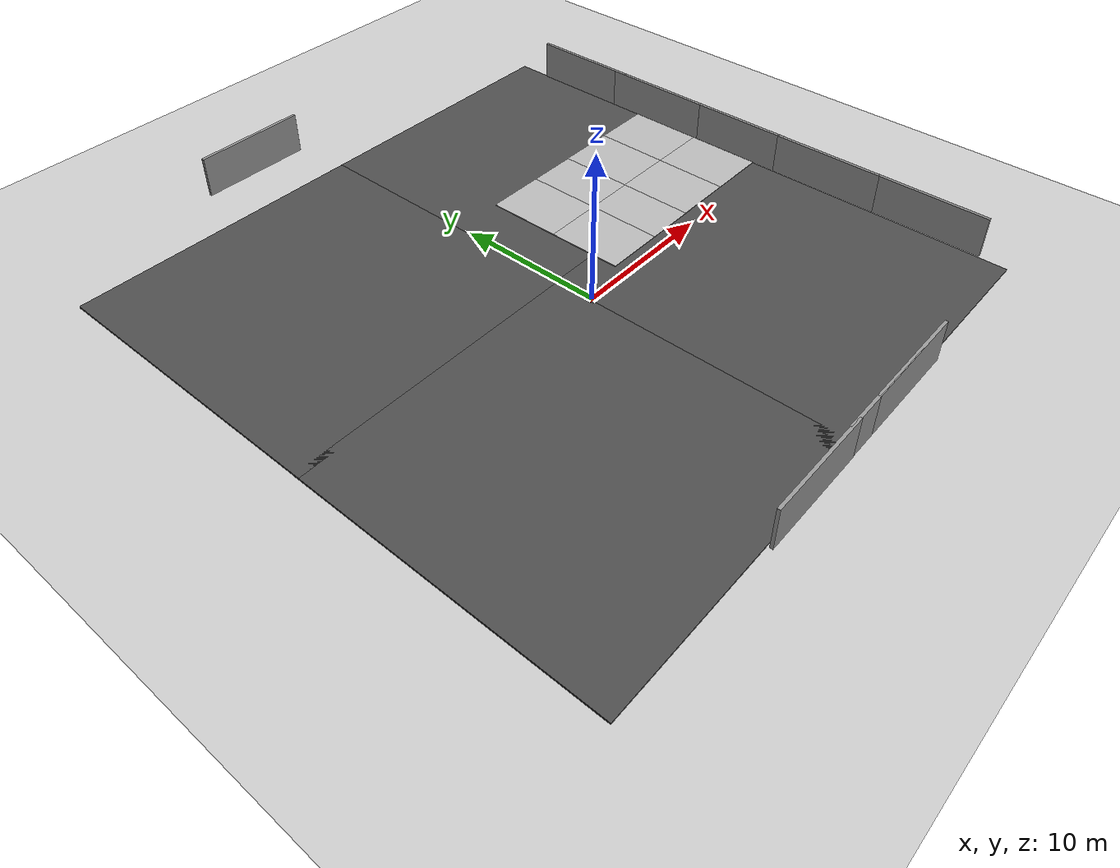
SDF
<sdf version="1.6">
 <world name="default">
  <model name="ground_plane">
   <static>1</static>
   <link name="link">
    <collision name="collision">
     <geometry><plane><normal>0 0 1</normal><size>100 100</size></plane></geometry>
     <surface><friction><ode><mu>100</mu><mu2>50</mu2></ode></friction></surface>
    </collision>
    <visual name="visual">
     <cast_shadows>0</cast_shadows>
     <geometry><plane><normal>0 0 1</normal><size>100 100</size></plane></geometry>
     <material>
      <script><uri>file://media/materials/scripts/gazebo.material</uri><name>Gazebo/Grey</name></script>
     </material>
    </visual>
   </link>
  </model>
  <model name="asphalt_plane">
   <static>1</static>
   <link name="link">
    <collision name="collision">
     <geometry><box><size>20 20 0.1</size></box></geometry>
     <surface><friction><ode><mu>100</mu><mu2>50</mu2></ode></friction></surface>
    </collision>
    <visual name="visual">
     <cast_shadows>0</cast_shadows>
     <geometry><box><size>20 20 0.1</size></box></geometry>
     <material>
      <script>
       <uri>model://asphalt_plane/materials/scripts</uri>
       <uri>model://asphalt_plane/materials/textures</uri>
       <name>vrc/asphalt</name>
      </script>
     </material>
    </visual>
   </link>
   <pose>-10.1692 -7.43707 0 0 -0 0</pose>
  </model>
  <model name="asphalt_plane_clone">
   <static>1</static>
   <link name="link">
    <collision name="collision">
     <geometry><box><size>20 20 0.1</size></box></geometry>
     <surface><friction><ode><mu>100</mu><mu2>50</mu2></ode></friction></surface>
    </collision>
    <visual name="visual">
     <cast_shadows>0</cast_shadows>
     <geometry><box><size>20 20 0.1</size></box></geometry>
     <material>
      <script>
       <uri>model://asphalt_plane/materials/scripts</uri>
       <uri>model://asphalt_plane/materials/textures</uri>
       <name>vrc/asphalt</name>
      </script>
     </material>
    </visual>
   </link>
   <pose>-10.1603 12.171 0 0 -0 0</pose>
  </model>
  <model name="asphalt_plane_clone_clone">
   <static>1</static>
   <link name="link">
    <collision name="collision">
     <geometry><box><size>20 20 0.1</size></box></geometry>
     <surface><friction><ode><mu>100</mu><mu2>50</mu2></ode></friction></surface>
    </collision>
    <visual name="visual">
     <cast_shadows>0</cast_shadows>
     <geometry><box><size>20 20 0.1</size></box></geometry>
     <material>
      <script>
       <uri>model://asphalt_plane/materials/scripts</uri>
       <uri>model://asphalt_plane/materials/textures</uri>
       <name>vrc/asphalt</name>
      </script>
     </material>
    </visual>
   </link>
   <pose>8.71597 12.1785 0 0 -0 0</pose>
  </model>
  <model name="asphalt_plane_clone_clone_0">
   <static>1</static>
   <link name="link">
    <collision name="collision">
     <geometry><box><size>20 20 0.1</size></box></geometry>
     <surface><friction><ode><mu>100</mu><mu2>50</mu2></ode></friction></surface>
    </collision>
    <visual name="visual">
     <cast_shadows>0</cast_shadows>
     <geometry><box><size>20 20 0.1</size></box></geometry>
     <material>
      <script>
       <uri>model://asphalt_plane/materials/scripts</uri>
       <uri>model://asphalt_plane/materials/textures</uri>
       <name>vrc/asphalt</name>
      </script>
     </material>
    </visual>
   </link>
   <pose>8.60996 -7.34898 0 0 -0 0</pose>
  </model>
  <model name="grey_wall">
   <static>1</static>
   <link name="link">
    <pose>0 0 1.4 0 -0 0</pose>
    <collision name="collision"><geometry><box><size>7.5 0.2 2.8</size></box></geometry></collision>
    <visual name="visual">
     <cast_shadows>0</cast_shadows>
     <geometry><box><size>7.5 0.2 2.8</size></box></geometry>
     <material>
      <script>
       <uri>model://grey_wall/materials/scripts</uri>
       <uri>model://grey_wall/materials/textures</uri>
       <name>vrc/grey_wall</name>
      </script>
     </material>
    </visual>
   </link>
   <pose>-4.8114 -17.6626 0 0 -0 0</pose>
  </model>
  <model name="grey_wall_clone">
   <static>1</static>
   <link name="link">
    <pose>0 0 1.4 0 -0 0</pose>
    <collision name="collision"><geometry><box><size>7.5 0.2 2.8</size></box></geometry></collision>
    <visual name="visual">
     <cast_shadows>0</cast_shadows>
     <geometry><box><size>7.5 0.2 2.8</size></box></geometry>
     <material>
      <script>
       <uri>model://grey_wall/materials/scripts</uri>
       <uri>model://grey_wall/materials/textures</uri>
       <name>vrc/grey_wall</name>
      </script>
     </material>
    </visual>
   </link>
   <pose>1.84642 -17.6367 0 0 -0 0</pose>
  </model>
  <model name="grey_wall_clone_0">
   <static>1</static>
   <link name="link">
    <pose>0 0 1.4 0 -0 0</pose>
    <collision name="collision"><geometry><box><size>7.5 0.2 2.8</size></box></geometry></collision>
    <visual name="visual">
     <cast_shadows>0</cast_shadows>
     <geometry><box><size>7.5 0.2 2.8</size></box></geometry>
     <material>
      <script>
       <uri>model://grey_wall/materials/scripts</uri>
       <uri>model://grey_wall/materials/textures</uri>
       <name>vrc/grey_wall</name>
      </script>
     </material>
    </visual>
   </link>
   <pose>4.62088 -17.6372 0 0 -0 0</pose>
  </model>
  <model name="grey_wall_clone_clone">
   <static>1</static>
   <link name="link">
    <pose>0 0 1.4 0 -0 0</pose>
    <collision name="collision"><geometry><box><size>7.5 0.2 2.8</size></box></geometry></collision>
    <visual name="visual">
     <cast_shadows>0</cast_shadows>
     <geometry><box><size>7.5 0.2 2.8</size></box></geometry>
     <material>
      <script>
       <uri>model://grey_wall/materials/scripts</uri>
       <uri>model://grey_wall/materials/textures</uri>
       <name>vrc/grey_wall</name>
      </script>
     </material>
    </visual>
   </link>
   <pose>-4.48764 26.0166 0 0 -0 0</pose>
  </model>
  <model name="grey_wall_clone_clone_clone">
   <static>1</static>
   <link name="link">
    <pose>0 0 1.4 0 -0 0</pose>
    <collision name="collision"><geometry><box><size>7.5 0.2 2.8</size></box></geometry></collision>
    <visual name="visual">
     <cast_shadows>0</cast_shadows>
     <geometry><box><size>7.5 0.2 2.8</size></box></geometry>
     <material>
      <script>
       <uri>model://grey_wall/materials/scripts</uri>
       <uri>model://grey_wall/materials/textures</uri>
       <name>vrc/grey_wall</name>
      </script>
     </material>
    </visual>
   </link>
   <pose>18.7544 16.0387 0 0 0 -1.56734</pose>
  </model>
  <model name="grey_wall_clone_clone_clone_clone">
   <static>1</static>
   <link name="link">
    <pose>0 0 1.4 0 -0 0</pose>
    <collision name="collision"><geometry><box><size>7.5 0.2 2.8</size></box></geometry></collision>
    <visual name="visual">
     <cast_shadows>0</cast_shadows>
     <geometry><box><size>7.5 0.2 2.8</size></box></geometry>
     <material>
      <script>
       <uri>model://grey_wall/materials/scripts</uri>
       <uri>model://grey_wall/materials/textures</uri>
       <name>vrc/grey_wall</name>
      </script>
     </material>
    </visual>
   </link>
   <pose>18.767 9.41754 0 0 0 -1.56734</pose>
  </model>
  <model name="grey_wall_clone_clone_clone_clone_0">
   <static>1</static>
   <link name="link">
    <pose>0 0 1.4 0 -0 0</pose>
    <collision name="collision"><geometry><box><size>7.5 0.2 2.8</size></box></geometry></collision>
    <visual name="visual">
     <cast_shadows>0</cast_shadows>
     <geometry><box><size>7.5 0.2 2.8</size></box></geometry>
     <material>
      <script>
       <uri>model://grey_wall/materials/scripts</uri>
       <uri>model://grey_wall/materials/textures</uri>
       <name>vrc/grey_wall</name>
      </script>
     </material>
    </visual>
   </link>
   <pose>18.7963 2.45369 0 0 0 -1.56734</pose>
  </model>
  <model name="grey_wall_clone_clone_clone_clone_1">
   <static>1</static>
   <link name="link">
    <pose>0 0 1.4 0 -0 0</pose>
    <collision name="collision"><geometry><box><size>7.5 0.2 2.8</size></box></geometry></collision>
    <visual name="visual">
     <cast_shadows>0</cast_shadows>
     <geometry><box><size>7.5 0.2 2.8</size></box></geometry>
     <material>
      <script>
       <uri>model://grey_wall/materials/scripts</uri>
       <uri>model://grey_wall/materials/textures</uri>
       <name>vrc/grey_wall</name>
      </script>
     </material>
    </visual>
   </link>
   <pose>18.8058 -4.41342 0 0 0 -1.56734</pose>
  </model>
  <model name="grey_wall_clone_clone_clone_clone_2">
   <static>1</static>
   <link name="link">
    <pose>0 0 1.4 0 -0 0</pose>
    <collision name="collision"><geometry><box><size>7.5 0.2 2.8</size></box></geometry></collision>
    <visual name="visual">
     <cast_shadows>0</cast_shadows>
     <geometry><box><size>7.5 0.2 2.8</size></box></geometry>
     <material>
      <script>
       <uri>model://grey_wall/materials/scripts</uri>
       <uri>model://grey_wall/materials/textures</uri>
       <name>vrc/grey_wall</name>
      </script>
     </material>
    </visual>
   </link>
   <pose>18.8343 -11.7301 0 0 0 -1.56734</pose>
  </model>
  <model name="mud_box">
   <static>1</static>
   <link name="link">
    <collision name="collision"><geometry><box><size>8 10 0.2</size></box></geometry></collision>
    <visual name="visual_1">
     <pose>-2 2.5 0 0 -0 0</pose>
     <cast_shadows>0</cast_shadows>
     <geometry><box><size>4 5 0.2</size></box></geometry>
     <material>
      <script>
       <uri>model://mud_box/materials/scripts</uri>
       <uri>model://mud_box/materials/textures</uri>
       <name>vrc/mud</name>
      </script>
     </material>
    </visual>
    <visual name="visual_2">
     <pose>2 2.5 0 0 -0 0</pose>
     <cast_shadows>0</cast_shadows>
     <geometry><box><size>4 5 0.2</size></box></geometry>
     <material>
      <script>
       <uri>model://mud_box/materials/scripts</uri>
       <uri>model://mud_box/materials/textures</uri>
       <name>vrc/mud</name>
      </script>
     </material>
    </visual>
    <visual name="visual_3">
     <pose>2 -2.5 0 0 -0 0</pose>
     <cast_shadows>0</cast_shadows>
     <geometry><box><size>4 5 0.2</size></box></geometry>
     <material>
      <script>
       <uri>model://mud_box/materials/scripts</uri>
       <uri>model://mud_box/materials/textures</uri>
       <name>vrc/mud</name>
      </script>
     </material>
    </visual>
    <visual name="visual_4">
     <pose>-2 -2.5 0 0 -0 0</pose>
     <cast_shadows>0</cast_shadows>
     <geometry><box><size>4 5 0.2</size></box></geometry>
     <material>
      <script>
       <uri>model://mud_box/materials/scripts</uri>
       <uri>model://mud_box/materials/textures</uri>
       <name>vrc/mud</name>
      </script>
     </material>
    </visual>
   </link>
   <pose>14.6137 5.86275 0 0 -0 0</pose>
  </model>
  <model name="mud_box_clone">
   <static>1</static>
   <link name="link">
    <collision name="collision"><geometry><box><size>8 10 0.2</size></box></geometry></collision>
    <visual name="visual_1">
     <pose>-2 2.5 0 0 -0 0</pose>
     <cast_shadows>0</cast_shadows>
     <geometry><box><size>4 5 0.2</size></box></geometry>
     <material>
      <script>
       <uri>model://mud_box/materials/scripts</uri>
       <uri>model://mud_box/materials/textures</uri>
       <name>vrc/mud</name>
      </script>
     </material>
    </visual>
    <visual name="visual_2">
     <pose>2 2.5 0 0 -0 0</pose>
     <cast_shadows>0</cast_shadows>
     <geometry><box><size>4 5 0.2</size></box></geometry>
     <material>
      <script>
       <uri>model://mud_box/materials/scripts</uri>
       <uri>model://mud_box/materials/textures</uri>
       <name>vrc/mud</name>
      </script>
     </material>
    </visual>
    <visual name="visual_3">
     <pose>2 -2.5 0 0 -0 0</pose>
     <cast_shadows>0</cast_shadows>
     <geometry><box><size>4 5 0.2</size></box></geometry>
     <material>
      <script>
       <uri>model://mud_box/materials/scripts</uri>
       <uri>model://mud_box/materials/textures</uri>
       <name>vrc/mud</name>
      </script>
     </material>
    </visual>
    <visual name="visual_4">
     <pose>-2 -2.5 0 0 -0 0</pose>
     <cast_shadows>0</cast_shadows>
     <geometry><box><size>4 5 0.2</size></box></geometry>
     <material>
      <script>
       <uri>model://mud_box/materials/scripts</uri>
       <uri>model://mud_box/materials/textures</uri>
       <name>vrc/mud</name>
      </script>
     </material>
    </visual>
   </link>
   <pose>7.23773 5.83307 0 0 -0 0</pose>
  </model>
  <light name="sun" type="directional">
   <pose>0 0 10 0 -0 0</pose>
   <diffuse>0.8 0.8 0.8 1</diffuse>
   <specular>0.2 0.2 0.2 1</specular>
   <attenuation>
    <range>1000</range>
    <constant>0.9</constant>
    <linear>0.01</linear>
    <quadratic>0.001</quadratic>
   </attenuation>
   <direction>-0.5 0.1 -0.9</direction>
  </light>
  <gravity>0 0 -9.8</gravity>
  <magnetic_field>6e-06 2.3e-05 -4.2e-05</magnetic_field>
  <atmosphere type="adiabatic"/>
  <physics name="default_physics" default="0" type="ode">
   <max_step_size>0.001</max_step_size>
   <real_time_factor>1</real_time_factor>
   <real_time_update_rate>1000</real_time_update_rate>
  </physics>
  <scene><ambient>0.4 0.4 0.4 1</ambient><background>0.7 0.7 0.7 1</background><shadows>1</shadows></scene>
  <audio><device>default</device></audio>
  <spherical_coordinates>
   <surface_model>EARTH_WGS84</surface_model>
   <latitude_deg>47.840640</latitude_deg>
   <longitude_deg>10.619944</longitude_deg>
   <elevation>740.0</elevation>
   <heading_deg>180</heading_deg>
  </spherical_coordinates>
  <include><uri>model://bigfootbot</uri></include>
 </world>
</sdf>

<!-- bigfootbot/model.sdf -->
<sdf version='1.5'> <!--- latest version is 1.9? -->
  <model name="bigfootbot">
    <!-- While we are creating the robot, we want Gazebo’s physics engine to ignore the robot
    so we set static to true -->
    <static>false</static>

    <!-- ****************** ROBOT BASE FOOTPRINT ***************************  -->
    <link name="base_footprint">
      <pose>0.0 0.0 0.0 0.0 0.0 0.0</pose>
    </link>

    <!-- ********************** ROBOT BASE *********************************  -->
    <link name="base_link">

      <inertial>
        <mass>20</mass>
        <inertia> <!-- inertias are tricky to compute -->
          <!-- http://gazebosim.org/tutorials?tut=inertia&cat=build_robot -->
          <ixx>0.083</ixx>       <!-- for a box: ixx = 0.083 * mass * (y*y + z*z) -->
          <ixy>0.0</ixy>         <!-- for a box: ixy = 0 -->
          <ixz>0.0</ixz>         <!-- for a box: ixz = 0 -->
          <iyy>0.083</iyy>       <!-- for a box: iyy = 0.083 * mass * (x*x + z*z) -->
          <iyz>0.0</iyz>         <!-- for a box: iyz = 0 -->
          <izz>0.083</izz>       <!-- for a box: izz = 0.083 * mass * (x*x + y*y) -->
        </inertia>
      </inertial>

      <collision name="base_collision">
        <pose>0 0 0 0 0 0</pose>
        <geometry>
          <box>
            <size>0.75 0.45 0.20</size>
          </box>
        </geometry>
      </collision>

      <visual name="base_visual">
        <pose>0.375 -0.225 -0.1 0 0 1.5708</pose>
        <geometry>
          <mesh>
            <uri>model://bigfootbot/meshes/frame_with_covers_2_m.stl</uri>
            <scale>1.0 1.0 1.0</scale>
          </mesh>
        </geometry>
        <material>
          <ambient>1.0 0.0 0.0 1.0</ambient> <!-- RGB [0..1] + alpha [0..1]-->
          <diffuse>1.0 0.0 0.0 1.0</diffuse>
          <specular>0.0 0.0 0.0 1.0</specular>
          <emissive>0.0 0.0 0.0 1.0</emissive>
        </material>
      </visual>

    </link>
    <!-- END OF ROBOT BASE -->

    <!-- ****************************** LIDAR *****************************    -->
    <link name="lidar_link">
      <inertial>
        <pose>0.215 0 0.13 0 0 0</pose>
        <inertia>
          <ixx>0.001</ixx>
          <ixy>0.000</ixy>
          <ixz>0.000</ixz>
          <iyy>0.001</iyy>
          <iyz>0.000</iyz>
          <izz>0.001</izz>
        </inertia>
        <mass>0.114</mass>
      </inertial>

      <collision name="lidar_collision">
        <pose>0.215 0 0.13 0 0 0</pose>
        <geometry>
          <cylinder>
            <radius>0.0508</radius>
            <length>0.18</length>
          </cylinder>
        </geometry>
      </collision>

      <visual name="lidar_visual">
        <pose>0.215 0 0.13 0 0 0</pose>
        <geometry>
          <cylinder>
            <radius>0.0508</radius>
            <length>0.18</length>
          </cylinder>
        </geometry>
        <material>
          <ambient>0.0 0.0 0.0 1.0</ambient>
          <diffuse>0.0 0.0 0.0 1.0</diffuse>
          <specular>0.0 0.0 0.0 1.0</specular>
          <emissive>0.0 0.0 0.0 1.0</emissive>
        </material>
      </visual>

      <sensor name="lidar" type="ray">
        <pose>0.215 0 0.215 0 0 0</pose>
        <always_on>true</always_on>
        <visualize>true</visualize>
        <update_rate>5</update_rate>
        <ray>
          <scan>
            <horizontal>
              <samples>360</samples>
              <resolution>1.00000</resolution>
              <min_angle>0.000000</min_angle>
              <max_angle>6.280000</max_angle>
            </horizontal>
          </scan>
          <range>
            <min>0.120000</min>
            <max>3.5</max>
            <resolution>0.015000</resolution>
          </range>
          <noise>
            <type>gaussian</type>
            <mean>0.0</mean>
            <stddev>0.01</stddev>
          </noise>
        </ray>
        <plugin name="scan" filename="libgazebo_ros_ray_sensor.so">
          <ros>
            <!-- Set namespace -->
            <namespace>/gazebo</namespace>

            <remapping>~/out:=scan</remapping>
          </ros>
          <output_type>sensor_msgs/LaserScan</output_type>
          <frame_name>lidar_link</frame_name>
        </plugin>
      </sensor>
    </link>
    <!-- END OF BLOCK 'Lidar' -->

    <!-- *********************** DRIVE WHEELS ******************************  -->
    <!-- front left wheel-->
    <link name="drivewhl_fl_link">
      <pose>0.275 0.295 -0.1 0 0 0</pose>

      <collision name="drivewhl_fl_collision">
        <pose>0 0 0 1.5708 0 0</pose>
        <geometry>
          <cylinder>
            <radius>0.165</radius>
            <length>0.1</length>
          </cylinder>
        </geometry>
      </collision>

      <visual name="drivewhl_fl_visual">
        <pose>0 0 0 0 0 3.1416</pose>
        <geometry>
          <mesh>
            <uri>model://bigfootbot/meshes/wheel_m.stl</uri>
            <scale>1.0 1.0 1.0</scale>
          </mesh>
        </geometry>
        <material>
          <ambient>0.5 0.5 0.5 1.0</ambient> <!-- RGB [0..1] + alpha [0..1]-->
          <diffuse>0.5 0.5 0.5 1.0</diffuse>
          <specular>0.0 0.0 0.0 1.0</specular>
          <emissive>0.0 0.0 0.0 1.0</emissive>
        </material>
      </visual>

    </link>

    <!-- front right wheel-->
    <link name="drivewhl_fr_link">
      <pose>0.275 -0.295 -0.1 0 0 0</pose>

      <collision name="drivewhl_fr_collision">
        <pose>0 0 0 1.5708 0 0</pose>
        <geometry>
          <cylinder>
            <radius>0.165</radius>
            <length>0.1</length>
          </cylinder>
        </geometry>
      </collision>

      <visual name="drivewhl_fr_visual">
        <geometry>
          <mesh>
            <uri>model://bigfootbot/meshes/wheel_m.stl</uri>
            <scale>1.0 1.0 1.0</scale>
          </mesh>
        </geometry>
        <material>
          <ambient>0.5 0.5 0.5 1.0</ambient> <!-- RGB [0..1] + alpha [0..1]-->
          <diffuse>0.5 0.5 0.5 1.0</diffuse>
          <specular>0.0 0.0 0.0 1.0</specular>
          <emissive>0.0 0.0 0.0 1.0</emissive>
        </material>
      </visual>

    </link>

    <!-- rear left wheel-->
    <link name="drivewhl_rl_link">
      <pose>-0.275 0.295 -0.1 0 0 0</pose>

      <collision name="drivewhl_rl_collision">
        <pose>0 0 0 1.5708 0 0</pose>
        <geometry>
          <cylinder>
            <radius>0.165</radius>
            <length>0.1</length>
          </cylinder>
        </geometry>
      </collision>

      <visual name="drivewhl_rl_visual">
        <pose>0 0 0 0 0 3.1416</pose>
        <geometry>
          <mesh>
            <uri>model://bigfootbot/meshes/wheel_m.stl</uri>
            <scale>1.0 1.0 1.0</scale>
          </mesh>
        </geometry>
        <material>
          <ambient>0.5 0.5 0.5 1.0</ambient> <!-- RGB [0..1] + alpha [0..1]-->
          <diffuse>0.5 0.5 0.5 1.0</diffuse>
          <specular>0.0 0.0 0.0 1.0</specular>
          <emissive>0.0 0.0 0.0 1.0</emissive>
        </material>
      </visual>

    </link>

    <!-- rear right wheel-->
    <link name="drivewhl_rr_link">
      <pose>-0.275 -0.295 -0.1 0 0 0</pose>

      <collision name="drivewhl_rr_collision">
        <pose>0 0 0 1.5708 0 0</pose>
        <geometry>
          <cylinder>
            <radius>0.165</radius>
            <length>0.1</length>
          </cylinder>
        </geometry>
      </collision>

      <visual name="drivewhl_rr_visual">
        <geometry>
          <mesh>
            <uri>model://bigfootbot/meshes/wheel_m.stl</uri>
            <scale>1.0 1.0 1.0</scale>
          </mesh>
        </geometry>
        <material>
          <ambient>0.5 0.5 0.5 1.0</ambient> <!-- RGB [0..1] + alpha [0..1]-->
          <diffuse>0.5 0.5 0.5 1.0</diffuse>
          <specular>0.0 0.0 0.0 1.0</specular>
          <emissive>0.0 0.0 0.0 1.0</emissive>
        </material>
      </visual>

    </link>>
    <!-- END OF DRIVE WHEELS -->

    <!-- ************************ JOINTS ***********************************  -->
    <!-- Pose of the joint is the same as the child link frame -->
    <!-- Axis is the axis of rotation relative to the child link frame -->

    <joint name="base_joint" type="fixed">
      <parent>base_footprint</parent>
      <child>base_link</child>
      <pose>0 0 0 0 0 0</pose>
    </joint>

    <joint name="drivewhl_fl_joint" type="revolute">
      <parent>base_link</parent>
      <child>drivewhl_fl_link</child>
      <pose>0 0 0 0 0 0</pose>
      <axis>
        <xyz>0 1 0</xyz>
      </axis>
    </joint>

    <joint name="drivewhl_fr_joint" type="revolute">
      <parent>base_link</parent>
      <child>drivewhl_fr_link</child>
      <pose>0 0 0 0 0 0</pose>
      <axis>
        <xyz>0 1 0</xyz>
      </axis>
    </joint>

    <joint name="drivewhl_rl_joint" type="revolute">
      <parent>base_link</parent>
      <child>drivewhl_rl_link</child>
      <pose>0 0 0 0 0 0</pose>
      <axis>
        <xyz>0 1 0</xyz>
      </axis>
    </joint>

    <joint name="drivewhl_rr_joint" type="revolute">
      <parent>base_link</parent>
      <child>drivewhl_rr_link</child>
      <pose>0 0 0 0 0 0</pose>
      <axis>
        <xyz>0 1 0</xyz>
      </axis>
    </joint>

    <joint name="lidar_joint" type="fixed">
      <parent>base_link</parent>
      <child>lidar_link</child>
      <pose>0 0 0 0 0 0</pose>
    </joint>

    <!-- END OF JOINTS -->

    <!-- *********** DIFFERENTIAL DRIVE CONTROLLER + WHEEL ODOMETRY ***************************-->
    <plugin name="bigfootbot_skid_drive" filename="libgazebo_ros_diff_drive.so">

      <update_rate>100</update_rate>

      <!-- Number of wheel pairs -->
      <num_wheel_pairs>2</num_wheel_pairs>

      <!-- Front pair of wheels -->
      <left_joint>drivewhl_fl_joint</left_joint>
      <right_joint>drivewhl_fr_joint</right_joint>

      <!-- Rear pair of wheels -->
      <left_joint>drivewhl_rl_joint</left_joint>
      <right_joint>drivewhl_rr_joint</right_joint>

      <!-- Kinematics -->
      <wheel_separation>0.62</wheel_separation> <!-- front wheel pair-->
      <!-- rear wheel pair-->

      <wheel_diameter>0.33</wheel_diameter> <!-- front wheels -->
      <!-- rear wheels -->

      <!-- limits -->
      <max_wheel_torque>20</max_wheel_torque> <!-- Maximum torque which the wheels can produce, in Nm, defaults to 5 Nm -->
      <max_wheel_acceleration>1.0</max_wheel_acceleration>

      <!-- Receive velocity commands on this ROS topic -->
      <command_topic>cmd_vel</command_topic>

      <!-- Topic to publish nav_msgs/Odometry messages, defaults to `odom` -->
      <odometry_topic>odom</odometry_topic>

      <!-- Odometry frame, defaults to `odom` -->
      <odometry_frame>odom</odometry_frame>

      <!-- Robot frame to calculate odometry from, defaults to `base_footprint` -->
      <robot_base_frame>base_footprint</robot_base_frame>

      <!-- output -->
      <!-- When false, publish no wheel odometry data to a ROS topic -->
      <publish_odom>true</publish_odom>

      <!-- When true, publish coordinate transform from odom to base_footprint -->
      <!-- I usually use the robot_localization package to publish this transform -->
      <publish_odom_tf>false</publish_odom_tf>

      <!-- When true, publish coordinate transform from base_link to the wheels, defaults to false -->
      <!-- The robot_state_publisher package is often used to publish this transform -->
      <publish_wheel_tf>false</publish_wheel_tf>

      <!-- Odometry source, 0 for ENCODER, 1 for WORLD, defaults to WORLD -->
      <odometry_source>1</odometry_source>

      <!-- Change the ROS topic we will publish the odometry data to -->
      <ros>
          <remapping> odom:=wheel/odometry</remapping>
          <remapping> /gazebo/cmd_vel:=/cmd_vel </remapping> <!-- we remap to /cmd_vel because the node teleop_twist_joy_node
                                                                  publishes to the topic /cmd_vel -->
          <!-- Set namespace -->
          <namespace>/gazebo</namespace>

          <!-- Remap default topics -->
      </ros>
    </plugin>
    <!-- END OF DIFFERENTIAL DRIVE CONTROLLER + WHEEL ODOMETRY -->

  </model>
</sdf>
